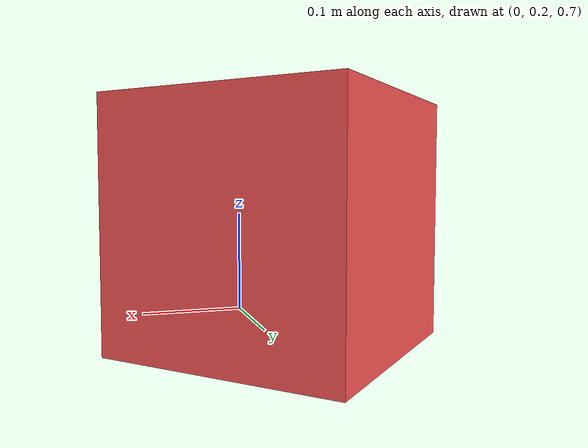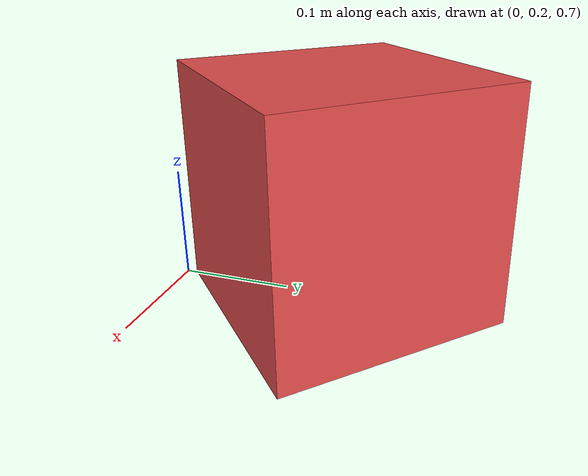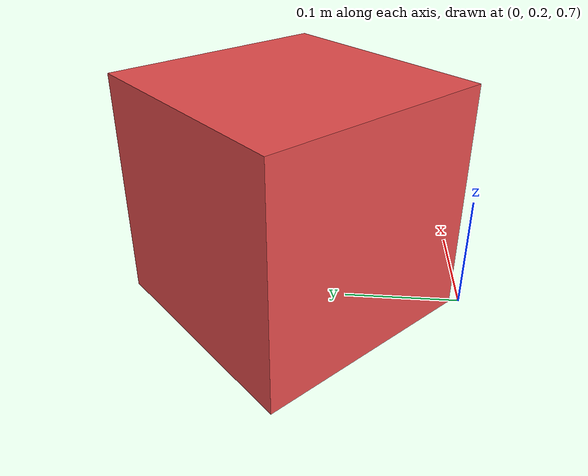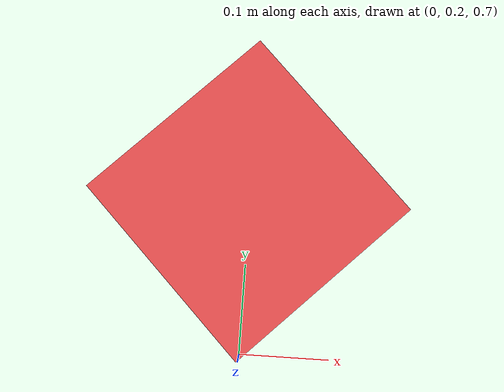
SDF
<?xml version='1.0'?>
<sdf version='1.6'>
  <model name='BoxLeft'>
    <link name='link'>
      <inertial>
        <mass>0.470029</mass>
        <inertia>
          <ixx>0.0013484</ixx>
          <ixy>0</ixy>
          <ixz>0</ixz>
          <iyy>0.00131238</iyy>
          <iyz>0</iyz>
          <izz>0.00199015</izz>
        </inertia>
        <pose frame=''>0 0 0 0 -0 0</pose>
      </inertial>
      <self_collide>0</self_collide>
      <enable_wind>0</enable_wind>
      <kinematic>0</kinematic>
      <pose frame=''>0 0.35 0.8 0 -0 0.78</pose>
      <gravity>1</gravity>
      <visual name='visual'>
        <pose frame=''>0 0 0 0 -0 0</pose>
        <geometry>
          <box>
            <size>0.2 0.2 0.2</size>
          </box>
        </geometry>
        <material>
          <shader type='pixel'>
            <normal_map>__default__</normal_map>
          </shader>
          <script>
            <name>ModelPreview_1::link::visual_MATERIAL_ModelPreview_1::link::visual_MATERIAL_</name>
            <uri>__default__</uri>
          </script>
          <ambient>0 0 0 1</ambient>
          <diffuse>0.9 0.3 0.3 1</diffuse>
          <specular>0.9 0.3 0.3 1</specular>
          <emissive>0.9 0.3 0.3 1</emissive>
        </material>
        <transparency>0</transparency>
        <cast_shadows>1</cast_shadows>
      </visual>
      <collision name='collision'>
        <laser_retro>0</laser_retro>
        <max_contacts>10</max_contacts>
        <pose frame=''>0 0 0 0 -0 0</pose>
        <geometry>
          <box>
            <size>0.2 0.2 0.2</size>
          </box>
        </geometry>
        <surface>
          <friction>
            <ode>
              <mu>1</mu>
              <mu2>1</mu2>
              <fdir1>0 0 0</fdir1>
              <slip1>0</slip1>
              <slip2>0</slip2>
            </ode>
            <torsional>
              <coefficient>1</coefficient>
              <patch_radius>0</patch_radius>
              <surface_radius>0</surface_radius>
              <use_patch_radius>1</use_patch_radius>
              <ode>
                <slip>0</slip>
              </ode>
            </torsional>
          </friction>
          <bounce>
            <restitution_coefficient>0</restitution_coefficient>
            <threshold>1e+06</threshold>
          </bounce>
          <contact>
            <collide_without_contact>0</collide_without_contact>
            <collide_without_contact_bitmask>1</collide_without_contact_bitmask>
            <collide_bitmask>1</collide_bitmask>
            <ode>
              <soft_cfm>0</soft_cfm>
              <soft_erp>0.2</soft_erp>
              <kp>100000</kp>
              <kd>1</kd>
              <max_vel>0.1</max_vel>
              <min_depth>0.001</min_depth>
            </ode>
            <bullet>
              <split_impulse>1</split_impulse>
              <split_impulse_penetration_threshold>-0.01</split_impulse_penetration_threshold>
              <soft_cfm>0</soft_cfm>
              <soft_erp>0.2</soft_erp>
              <kp>100000</kp>
              <kd>1</kd>
            </bullet>
          </contact>
        </surface>
      </collision>
    </link>
    <static>0</static>
    <allow_auto_disable>1</allow_auto_disable>
    <plugin name='get_object_world_pose' filename='libgazebo_yarp_GetObjectWorldPose.so'>
    </plugin>
  </model>
</sdf>
